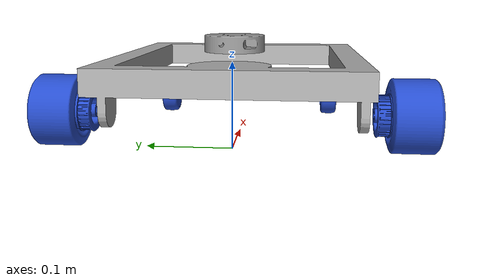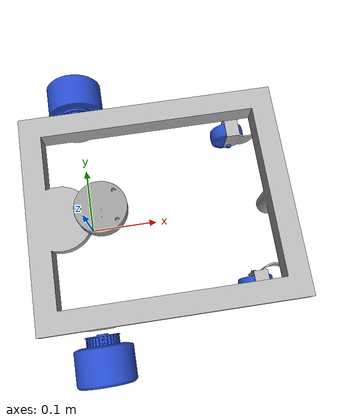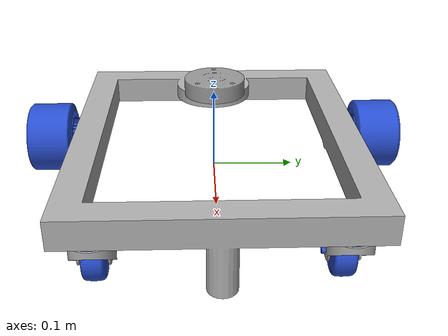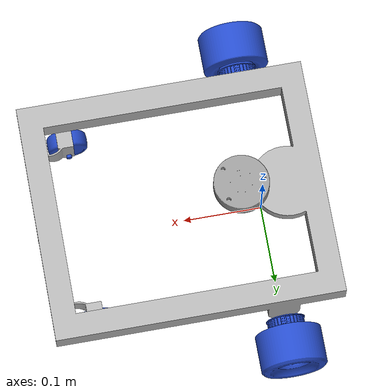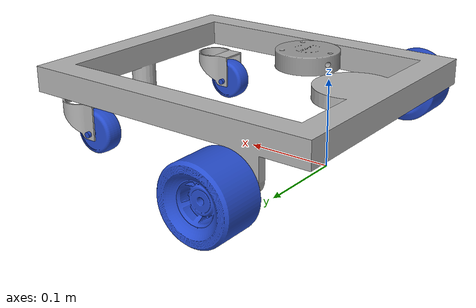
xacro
<?xml version="1.0" ?>
<robot name="scuttle" xmlns:xacro="http://www.ros.org/wiki/xacro">

<xacro:include filename="$(find scuttle_description)/urdf/materials.xacro" />
<xacro:include filename="$(find scuttle_description)/urdf/scuttle.trans" />
<xacro:include filename="$(find scuttle_description)/urdf/scuttle.gazebo" />

<link name="base_link">
  <inertial>
    <origin rpy="0 0 0" xyz="2.12433370053547e-05 -0.07877992189559235 0.07392564365565002"/>
    <mass value="3.288323846275119"/>
    <inertia ixx="0.038876" ixy="1.3e-05" ixz="1e-06" iyy="0.047513" iyz="0.000486" izz="0.084083"/>
  </inertial>
  <visual>
    <origin rpy="0 0 1.570796" xyz="0 0 0"/>
    <geometry>
      <mesh filename="package://scuttle_description/meshes/base_link.stl" scale="0.001 0.001 0.001"/>
    </geometry>
    <material name="silver"/>
  </visual>
  <collision>
    <origin rpy="0 0 1.570796" xyz="0 0 0"/>
    <geometry>
      <mesh filename="package://scuttle_description/meshes/base_link_collision_1.stl" scale="0.001 0.001 0.001"/>
    </geometry>
  </collision>
</link>

<link name="l_wheel_1">
  <inertial>
    <origin rpy="0 0 0" xyz="-0.020325481156161784 -9.763736334427187e-09 4.516951403188418e-09"/>
    <mass value="0.5928646271111422"/>
    <inertia ixx="0.000334" ixy="0.0" ixz="-0.0" iyy="0.000332" iyz="-0.0" izz="0.000332"/>
  </inertial>
  <visual>
    <origin rpy="0 0 0" xyz="-0.21235 -0.0 -0.04175"/>
    <geometry>
      <mesh filename="package://scuttle_description/meshes/l_wheel_1.stl" scale="0.001 0.001 0.001"/>
    </geometry>
    <material name="blue"/>
  </visual>
  <collision>
    <origin rpy="0 0 0" xyz="-0.21235 -0.0 -0.04175"/>
    <geometry>
      <mesh filename="package://scuttle_description/meshes/l_wheel_collision_1.stl" scale="0.001 0.001 0.001"/>
    </geometry>
  </collision>
</link>

<link name="r_wheel_1">
  <inertial>
    <origin rpy="0 0 0" xyz="0.020325563043213257 1.3954236146756306e-08 2.0353343177514915e-09"/>
    <mass value="0.592867092340216"/>
    <inertia ixx="0.000334" ixy="0.0" ixz="0.0" iyy="0.000332" iyz="-0.0" izz="0.000332"/>
  </inertial>
  <visual>
    <origin rpy="0 0 0" xyz="0.21215 0.0 -0.04175"/>
    <geometry>
      <mesh filename="package://scuttle_description/meshes/r_wheel_1.stl" scale="0.001 0.001 0.001"/>
    </geometry>
    <material name="blue"/>
  </visual>
  <collision>
    <origin rpy="0 0 0" xyz="0.21215 0.0 -0.04175"/>
    <geometry>
      <mesh filename="package://scuttle_description/meshes/r_wheel_collision_1.stl" scale="0.001 0.001 0.001"/>
    </geometry>
  </collision>
</link>

<link name="lidar_1">
  <inertial>
    <origin rpy="0 0 0" xyz="-0.0010241190327231165 -0.0008953477993804172 0.009594767416774092"/>
    <mass value="0.07327266108520486"/>
    <inertia ixx="2.5e-05" ixy="1e-06" ixz="0.0" iyy="2.5e-05" iyz="0.0" izz="4.4e-05"/>
  </inertial>
  <visual>
    <origin rpy="0 0 0" xyz="-0.0 0.0275 -0.1096"/>
    <geometry>
      <mesh filename="package://scuttle_description/meshes/lidar_1.stl" scale="0.001 0.001 0.001"/>
    </geometry>
    <material name="gray"/>
  </visual>
  <collision>
    <origin rpy="0 0 0" xyz="-0.0 0.0275 -0.1096"/>
    <geometry>
      <mesh filename="package://scuttle_description/meshes/lidar_1.stl" scale="0.001 0.001 0.001"/>
    </geometry>
  </collision>
</link>

<link name="r_caster_swivel_1">
  <inertial>
    <origin rpy="0 0 0" xyz="-0.0002554502352885568 0.010633952722858359 -0.012968467515129908"/>
    <mass value="0.02074189648802402"/>
    <inertia ixx="7e-06" ixy="0.0" ixz="0.0" iyy="8e-06" iyz="1e-06" izz="9e-06"/>
  </inertial>
  <visual>
    <origin rpy="0 0 0" xyz="0.119279 0.254415 -0.059282"/>
    <geometry>
      <mesh filename="package://scuttle_description/meshes/r_caster_swivel_1.stl" scale="0.001 0.001 0.001"/>
    </geometry>
    <material name="silver"/>
  </visual>
  <collision>
    <origin rpy="0 0 0" xyz="0.119279 0.254415 -0.059282"/>
    <geometry>
      <mesh filename="package://scuttle_description/meshes/r_caster_swivel_collision_1.stl" scale="0.001 0.001 0.001"/>
    </geometry>
  </collision>
</link>

<link name="l_caster_swivel_1">
  <inertial>
    <origin rpy="0 0 0" xyz="-0.00025520971284771765 0.010633952722903461 -0.012968467515129777"/>
    <mass value="0.02074189648802399"/>
    <inertia ixx="7e-06" ixy="0.0" ixz="0.0" iyy="8e-06" iyz="1e-06" izz="9e-06"/>
  </inertial>
  <visual>
    <origin rpy="0 0 0" xyz="-0.119015 0.254415 -0.059282"/>
    <geometry>
      <mesh filename="package://scuttle_description/meshes/l_caster_swivel_1.stl" scale="0.001 0.001 0.001"/>
    </geometry>
    <material name="silver"/>
  </visual>
  <collision>
    <origin rpy="0 0 0" xyz="-0.119015 0.254415 -0.059282"/>
    <geometry>
      <mesh filename="package://scuttle_description/meshes/l_caster_swivel_collision_1.stl" scale="0.001 0.001 0.001"/>
    </geometry>
  </collision>
</link>

<link name="l_caster_wheel_1">
  <inertial>
    <origin rpy="0 0 0" xyz="0.0160002016389222 -1.6368916427866864e-07 -7.02880924990934e-08"/>
    <mass value="0.03841110590847018"/>
    <inertia ixx="1.2e-05" ixy="0.0" ixz="-0.0" iyy="7e-06" iyz="0.0" izz="7e-06"/>
  </inertial>
  <visual>
    <origin rpy="0 0 0" xyz="-0.101223 0.230415 -0.025282"/>
    <geometry>
      <mesh filename="package://scuttle_description/meshes/l_caster_wheel_1.stl" scale="0.001 0.001 0.001"/>
    </geometry>
    <material name="blue"/>
  </visual>
  <collision>
    <origin rpy="0 0 0" xyz="-0.101223 0.230415 -0.025282"/>
    <geometry>
      <mesh filename="package://scuttle_description/meshes/l_caster_wheel_collision_1.stl" scale="0.001 0.001 0.001"/>
    </geometry>
  </collision>
</link>

<link name="r_caster_wheel_1">
  <inertial>
    <origin rpy="0 0 0" xyz="-0.016000038883518655 -1.6368920854881175e-07 -7.028809271419911e-08"/>
    <mass value="0.03841110590847031"/>
    <inertia ixx="1.2e-05" ixy="-0.0" ixz="0.0" iyy="7e-06" iyz="0.0" izz="7e-06"/>
  </inertial>
  <visual>
    <origin rpy="0 0 0" xyz="0.105071 0.230415 -0.025282"/>
    <geometry>
      <mesh filename="package://scuttle_description/meshes/r_caster_wheel_1.stl" scale="0.001 0.001 0.001"/>
    </geometry>
    <material name="blue"/>
  </visual>
  <collision>
    <origin rpy="0 0 0" xyz="0.105071 0.230415 -0.025282"/>
    <geometry>
      <mesh filename="package://scuttle_description/meshes/r_caster_wheel_collision_1.stl" scale="0.001 0.001 0.001"/>
    </geometry>
  </collision>
</link>

<joint name="l_wheel_joint" type="continuous">
  <origin rpy="0 0 1.570796" xyz="0.0 0.21235 0.04175"/>
  <parent link="base_link"/>
  <child link="l_wheel_1"/>
  <axis xyz="1.0 -0.0 0.0"/>
</joint>

<joint name="r_wheel_joint" type="continuous">
  <origin rpy="0 0 1.570796" xyz="0.0 -0.21215 0.04175"/>
  <parent link="base_link"/>
  <child link="r_wheel_1"/>
  <axis xyz="1.0 0.0 -0.0"/>
</joint>

<joint name="lidar" type="fixed">
  <origin rpy="0 0 3.141592" xyz="0.0275 0.0 0.1096"/>
  <parent link="base_link"/>
  <child link="lidar_1"/>
</joint>

<joint name="r_caster_swivel_joint" type="continuous">
  <origin rpy="0 0 1.570796" xyz="0.254415 0.119279 0.059282"/>
  <parent link="base_link"/>
  <child link="r_caster_swivel_1"/>
  <axis xyz="0.0 0.0 1.0"/>
</joint>

<joint name="l_caster_swivel_joint" type="continuous">
  <origin rpy="0 0 1.570796" xyz="0.254415 -0.119015 0.059282"/>
  <parent link="base_link"/>
  <child link="l_caster_swivel_1"/>
  <axis xyz="0.0 -0.0 1.0"/>
</joint>

<joint name="r_caster_wheel_joint" type="continuous">
  <origin rpy="0 0 0" xyz="-0.017792 0.024 -0.034"/>
  <parent link="l_caster_swivel_1"/>
  <child link="l_caster_wheel_1"/>
  <axis xyz="1.0 0.0 -0.0"/>
</joint>

<joint name="l_caster_wheel_joint" type="continuous">
  <origin rpy="0 0 0" xyz="0.014208 0.024 -0.034"/>
  <parent link="r_caster_swivel_1"/>
  <child link="r_caster_wheel_1"/>
  <axis xyz="-1.0 -0.0 0.0"/>
</joint>

</robot>

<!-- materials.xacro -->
<robot name="scuttle" xmlns:xacro="http://www.ros.org/wiki/xacro" >

<material name="silver">
  <color rgba="0.700 0.700 0.700 1.000"/>
</material>

</robot>

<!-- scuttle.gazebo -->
<robot name="scuttle" xmlns:xacro="http://www.ros.org/wiki/xacro" >

<xacro:property name="body_color" value="Gazebo/Silver" />

<gazebo>
  <plugin filename="libgazebo_ros_control.so" name="control"/>
</gazebo>
<gazebo reference="base_link">
  <material>${body_color}</material>
  <mu1>0.2</mu1>
  <mu2>0.2</mu2>
  <selfCollide>true</selfCollide>
  <gravity>true</gravity>
</gazebo>

<gazebo reference="l_wheel_1">
  <material>${body_color}</material>
  <mu1>0.9</mu1>
  <mu2>0.9</mu2>
  <selfCollide>true</selfCollide>
</gazebo>

<gazebo reference="r_wheel_1">
  <material>${body_color}</material>
  <mu1>0.9</mu1>
  <mu2>0.9</mu2>
  <selfCollide>true</selfCollide>
</gazebo>

<gazebo reference="LiDAR_1">
  <material>${body_color}</material>
  <mu1>0.2</mu1>
  <mu2>0.2</mu2>
  <selfCollide>true</selfCollide>
</gazebo>

<gazebo reference="r_caster_swivel_1">
  <material>${body_color}</material>
  <mu1>0.2</mu1>
  <mu2>0.2</mu2>
  <selfCollide>true</selfCollide>
</gazebo>

<gazebo reference="l_caster_swivel_1">
  <material>${body_color}</material>
  <mu1>0.2</mu1>
  <mu2>0.2</mu2>
  <selfCollide>true</selfCollide>
</gazebo>

<gazebo reference="l_caster_wheel_1">
  <material>${body_color}</material>
  <mu1>0.4</mu1>
  <mu2>0.4</mu2>
  <selfCollide>true</selfCollide>
</gazebo>

<gazebo reference="r_caster_wheel_1">
  <material>${body_color}</material>
  <mu1>0.4</mu1>
  <mu2>0.4</mu2>
  <selfCollide>true</selfCollide>
</gazebo>

<gazebo>
  <plugin name="differential_drive_controller" filename="libgazebo_ros_diff_drive.so">

    <!-- Plugin update rate in Hz -->
    <updateRate>50</updateRate>

    <!-- Name of left joint, defaults to `left_joint` -->
    <leftJoint>l_wheel_joint</leftJoint>

    <!-- Name of right joint, defaults to `right_joint` -->
    <rightJoint>r_wheel_joint</rightJoint>

    <!-- The distance from the center of one wheel to the other, in meters, defaults to 0.34 m -->
    <wheelSeparation>0.355</wheelSeparation>

    <!-- Diameter of the wheels, in meters, defaults to 0.15 m -->
    <wheelDiameter>0.0833</wheelDiameter>

    <!-- Wheel acceleration, in rad/s^2, defaults to 0.0 rad/s^2 -->
    <wheelAcceleration>9.6</wheelAcceleration>

    <!-- Maximum torque which the wheels can produce, in Nm, defaults to 5 Nm -->
    <wheelTorque>0.6</wheelTorque>

    <!-- Topic to receive geometry_msgs/Twist message commands, defaults to `cmd_vel` -->
    <commandTopic>cmd_vel</commandTopic>

    <!-- Topic to publish nav_msgs/Odometry messages, defaults to `odom` -->
    <odometryTopic>odom</odometryTopic>

    <!-- Odometry frame, defaults to `odom` -->
    <odometryFrame>odom</odometryFrame>

    <!-- Robot frame to calculate odometry from, defaults to `base_footprint` -->
    <robotBaseFrame>base_link</robotBaseFrame>

    <!-- Odometry source, 0 for ENCODER, 1 for WORLD, defaults to WORLD -->
    <odometrySource>1</odometrySource>

    <!-- Set to true to publish transforms for the wheel links, defaults to false -->
    <publishWheelTF>true</publishWheelTF>

    <!-- Set to true to publish transforms for the odometry, defaults to true -->
    <publishOdom>true</publishOdom>

    <!-- Set to true to publish sensor_msgs/JointState on /joint_states for the wheel joints, defaults to false -->
    <publishWheelJointState>true</publishWheelJointState>

    <!-- Set to true to swap right and left wheels, defaults to true -->
    <legacyMode>false</legacyMode>
  </plugin>
</gazebo>
  <!-- hokuyo -->
  <gazebo reference="LiDAR_1">
    <sensor type="gpu_ray" name="head_hokuyo_sensor">
      <pose>0 0 0.01 0 0 0</pose>
      <visualize>false</visualize>
      <update_rate>5.5</update_rate>
      <ray>
        <scan>
          <horizontal>
            <samples></samples>
            <resolution>1</resolution>
            <min_angle>0</min_angle>
            <max_angle>6.283185307179586</max_angle>
          </horizontal>
        </scan>
        <range>
          <min>0.15</min>
          <max>12.0</max>
          <resolution>0.005</resolution>
        </range>
        <noise>
          <type>gaussian</type>
          <mean>0.0</mean>
          <stddev>0.01</stddev>
        </noise>
      </ray>
      <plugin name="gazebo_ros_head_hokuyo_controller" filename="libgazebo_ros_gpu_laser.so">
        <topicName>/scan</topicName>
        <frameName>LiDAR_1</frameName>
      </plugin>
    </sensor>
  </gazebo>
</robot>
